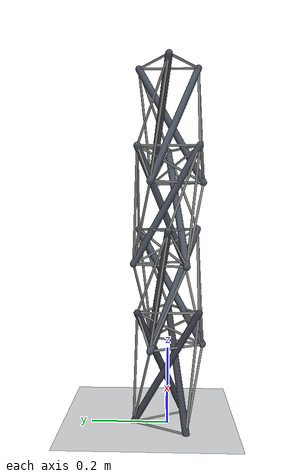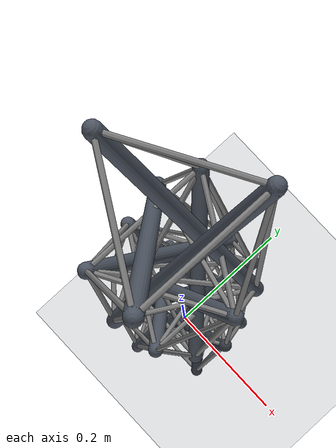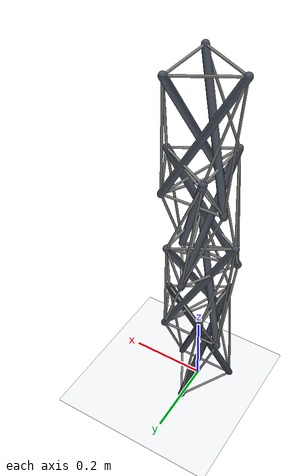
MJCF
<mujoco model="cell_graph">
  <compiler angle="radian" autolimits="true"/>
  <visual>
    <global offwidth="1600" offheight="1200"/>
    <headlight diffuse="0.7 0.7 0.7" ambient="0.45 0.45 0.45"
               specular="0.1 0.1 0.1"/>
  </visual>
  <asset>
    <texture type="skybox" builtin="flat" rgb1="1 1 1" rgb2="1 1 1"
             width="256" height="256"/>
    <texture name="grid" type="2d" builtin="checker" rgb1="0.88 0.89 0.90"
             rgb2="0.96 0.96 0.97" width="512" height="512"/>
    <material name="grid" texture="grid" texrepeat="10 10" reflectance="0.05"/>
  </asset>
  <option timestep="5e-05" integrator="implicitfast" gravity="0 0 -9.81"/>
  <worldbody>
    <light pos="1.2 -1.2 2.6" dir="-0.4 0.4 -1" directional="true"
           diffuse="0.85 0.85 0.85"/>
    <light pos="-1.5 1.0 2.0" dir="0.5 -0.35 -1" directional="true"
           diffuse="0.35 0.35 0.35"/>
    <geom name="floor" type="plane" size="4 4 0.1" material="grid"
          contype="0" conaffinity="0"/>
    <geom type="capsule" size="0.009" contype="0" conaffinity="0" rgba="0.22 0.24 0.28 1" fromto="0.00000 0.09000 0.00000 -0.04527 -0.07778 0.30000"/>
    <geom type="capsule" size="0.009" contype="0" conaffinity="0" rgba="0.22 0.24 0.28 1" fromto="-0.07794 -0.04500 0.00000 0.09000 -0.00031 0.30000"/>
    <geom type="capsule" size="0.009" contype="0" conaffinity="0" rgba="0.22 0.24 0.28 1" fromto="0.07794 -0.04500 0.00000 -0.04473 0.07810 0.30000"/>
    <site name="c0_b0" pos="0.00000 0.09000 0.00000" size="0.005"/>
    <site name="c0_t0" pos="-0.04473 0.07810 0.30000" size="0.005"/>
    <site name="c0_b1" pos="-0.07794 -0.04500 0.00000" size="0.005"/>
    <site name="c0_t1" pos="-0.04527 -0.07778 0.30000" size="0.005"/>
    <site name="c0_b2" pos="0.07794 -0.04500 0.00000" size="0.005"/>
    <site name="c0_t2" pos="0.09000 -0.00031 0.30000" size="0.005"/>

    <body name="c1_s0" pos="-0.01661 -0.01655 0.36000">
      <freejoint/>
      <geom type="capsule" size="0.009" mass="0.0200"
            contype="0" conaffinity="0" rgba="0.30 0.33 0.38 1"
            fromto="-0.06133 0.06155 -0.15000
                    0.06133 -0.06155 0.15000"/>      <site name="c1_b0" pos="-0.06133 0.06155 -0.15000" size="0.005"/>      <site name="c1_t1" pos="0.06133 -0.06155 0.15000" size="0.005"/>    </body>
    <body name="c1_s1" pos="0.02264 -0.00611 0.36000">
      <freejoint/>
      <geom type="capsule" size="0.009" mass="0.0200"
            contype="0" conaffinity="0" rgba="0.30 0.33 0.38 1"
            fromto="-0.02264 -0.08389 -0.15000
                    0.02264 0.08389 0.15000"/>      <site name="c1_b1" pos="-0.02264 -0.08389 -0.15000" size="0.005"/>      <site name="c1_t2" pos="0.02264 0.08389 0.15000" size="0.005"/>    </body>
    <body name="c1_s2" pos="-0.00603 0.02266 0.36000">
      <freejoint/>
      <geom type="capsule" size="0.009" mass="0.0200"
            contype="0" conaffinity="0" rgba="0.30 0.33 0.38 1"
            fromto="0.08397 0.02234 -0.15000
                    -0.08397 -0.02234 0.15000"/>      <site name="c1_b2" pos="0.08397 0.02234 -0.15000" size="0.005"/>      <site name="c1_t0" pos="-0.08397 -0.02234 0.15000" size="0.005"/>    </body>
    <body name="c2_s0" pos="0.00603 -0.02266 0.57000">
      <freejoint/>
      <geom type="capsule" size="0.009" mass="0.0200"
            contype="0" conaffinity="0" rgba="0.30 0.33 0.38 1"
            fromto="-0.08397 -0.02234 -0.15000
                    0.08397 0.02234 0.15000"/>      <site name="c2_b0" pos="-0.08397 -0.02234 -0.15000" size="0.005"/>      <site name="c2_t1" pos="0.08397 0.02234 0.15000" size="0.005"/>    </body>
    <body name="c2_s1" pos="0.01661 0.01655 0.57000">
      <freejoint/>
      <geom type="capsule" size="0.009" mass="0.0200"
            contype="0" conaffinity="0" rgba="0.30 0.33 0.38 1"
            fromto="0.06133 -0.06155 -0.15000
                    -0.06133 0.06155 0.15000"/>      <site name="c2_b1" pos="0.06133 -0.06155 -0.15000" size="0.005"/>      <site name="c2_t2" pos="-0.06133 0.06155 0.15000" size="0.005"/>    </body>
    <body name="c2_s2" pos="-0.02264 0.00611 0.57000">
      <freejoint/>
      <geom type="capsule" size="0.009" mass="0.0200"
            contype="0" conaffinity="0" rgba="0.30 0.33 0.38 1"
            fromto="0.02264 0.08389 -0.15000
                    -0.02264 -0.08389 0.15000"/>      <site name="c2_b2" pos="0.02264 0.08389 -0.15000" size="0.005"/>      <site name="c2_t0" pos="-0.02264 -0.08389 0.15000" size="0.005"/>    </body>
    <body name="c3_s0" pos="0.02264 -0.00611 0.78000">
      <freejoint/>
      <geom type="capsule" size="0.009" mass="0.0200"
            contype="0" conaffinity="0" rgba="0.30 0.33 0.38 1"
            fromto="-0.02264 -0.08389 -0.15000
                    0.02264 0.08389 0.15000"/>      <site name="c3_b0" pos="-0.02264 -0.08389 -0.15000" size="0.005"/>      <site name="c3_t1" pos="0.02264 0.08389 0.15000" size="0.005"/>    </body>
    <body name="c3_s1" pos="-0.00603 0.02266 0.78000">
      <freejoint/>
      <geom type="capsule" size="0.009" mass="0.0200"
            contype="0" conaffinity="0" rgba="0.30 0.33 0.38 1"
            fromto="0.08397 0.02234 -0.15000
                    -0.08397 -0.02234 0.15000"/>      <site name="c3_b1" pos="0.08397 0.02234 -0.15000" size="0.005"/>      <site name="c3_t2" pos="-0.08397 -0.02234 0.15000" size="0.005"/>    </body>
    <body name="c3_s2" pos="-0.01661 -0.01655 0.78000">
      <freejoint/>
      <geom type="capsule" size="0.009" mass="0.0200"
            contype="0" conaffinity="0" rgba="0.30 0.33 0.38 1"
            fromto="-0.06133 0.06155 -0.15000
                    0.06133 -0.06155 0.15000"/>      <site name="c3_b2" pos="-0.06133 0.06155 -0.15000" size="0.005"/>      <site name="c3_t0" pos="0.06133 -0.06155 0.15000" size="0.005"/>    </body>
  </worldbody>
  <tendon>
    <spatial name="c0" width="0.003" stiffness="40000.0" damping="4.00" springlength="0 0.152883">
      <site site="c0_b0"/>
      <site site="c0_b1"/>
    </spatial>
    <spatial name="c1" width="0.003" stiffness="40000.0" damping="4.00" springlength="0 0.152881">
      <site site="c0_t0"/>
      <site site="c0_t1"/>
    </spatial>
    <spatial name="c2" width="0.003" stiffness="40000.0" damping="4.00" springlength="0 0.300550">
      <site site="c0_b0"/>
      <site site="c0_t0"/>
    </spatial>
    <spatial name="c3" width="0.003" stiffness="40000.0" damping="4.00" springlength="0 0.152880">
      <site site="c0_b1"/>
      <site site="c0_b2"/>
    </spatial>
    <spatial name="c4" width="0.003" stiffness="40000.0" damping="4.00" springlength="0 0.152883">
      <site site="c0_t1"/>
      <site site="c0_t2"/>
    </spatial>
    <spatial name="c5" width="0.003" stiffness="40000.0" damping="4.00" springlength="0 0.300549">
      <site site="c0_b1"/>
      <site site="c0_t1"/>
    </spatial>
    <spatial name="c6" width="0.003" stiffness="40000.0" damping="4.00" springlength="0 0.152883">
      <site site="c0_b2"/>
      <site site="c0_b0"/>
    </spatial>
    <spatial name="c7" width="0.003" stiffness="40000.0" damping="4.00" springlength="0 0.152886">
      <site site="c0_t2"/>
      <site site="c0_t0"/>
    </spatial>
    <spatial name="c8" width="0.003" stiffness="40000.0" damping="4.00" springlength="0 0.300550">
      <site site="c0_b2"/>
      <site site="c0_t2"/>
    </spatial>
    <spatial name="c9" width="0.003" stiffness="40000.0" damping="4.00" springlength="0 0.152883">
      <site site="c1_b0"/>
      <site site="c1_b1"/>
    </spatial>
    <spatial name="c10" width="0.003" stiffness="40000.0" damping="4.00" springlength="0 0.152882">
      <site site="c1_t0"/>
      <site site="c1_t1"/>
    </spatial>
    <spatial name="c11" width="0.003" stiffness="40000.0" damping="4.00" springlength="0 0.300549">
      <site site="c1_b0"/>
      <site site="c1_t0"/>
    </spatial>
    <spatial name="c12" width="0.003" stiffness="40000.0" damping="4.00" springlength="0 0.152883">
      <site site="c1_b1"/>
      <site site="c1_b2"/>
    </spatial>
    <spatial name="c13" width="0.003" stiffness="40000.0" damping="4.00" springlength="0 0.152881">
      <site site="c1_t1"/>
      <site site="c1_t2"/>
    </spatial>
    <spatial name="c14" width="0.003" stiffness="40000.0" damping="4.00" springlength="0 0.300548">
      <site site="c1_b1"/>
      <site site="c1_t1"/>
    </spatial>
    <spatial name="c15" width="0.003" stiffness="40000.0" damping="4.00" springlength="0 0.152880">
      <site site="c1_b2"/>
      <site site="c1_b0"/>
    </spatial>
    <spatial name="c16" width="0.003" stiffness="40000.0" damping="4.00" springlength="0 0.152887">
      <site site="c1_t2"/>
      <site site="c1_t0"/>
    </spatial>
    <spatial name="c17" width="0.003" stiffness="40000.0" damping="4.00" springlength="0 0.300548">
      <site site="c1_b2"/>
      <site site="c1_t2"/>
    </spatial>
    <spatial name="c18" width="0.003" stiffness="40000.0" damping="4.00" springlength="0 0.098482">
      <site site="c0_t0"/>
      <site site="c1_b0"/>
    </spatial>
    <spatial name="c19" width="0.003" stiffness="40000.0" damping="4.00" springlength="0 0.225471">
      <site site="c0_t0"/>
      <site site="c1_t0"/>
    </spatial>
    <spatial name="c20" width="0.003" stiffness="40000.0" damping="4.00" springlength="0 0.192853">
      <site site="c0_t0"/>
      <site site="c1_b1"/>
    </spatial>
    <spatial name="c21" width="0.003" stiffness="40000.0" damping="4.00" springlength="0 0.225472">
      <site site="c0_b0"/>
      <site site="c1_b0"/>
    </spatial>
    <spatial name="c22" width="0.003" stiffness="40000.0" damping="4.00" springlength="0 0.098483">
      <site site="c0_t1"/>
      <site site="c1_b1"/>
    </spatial>
    <spatial name="c23" width="0.003" stiffness="40000.0" damping="4.00" springlength="0 0.225469">
      <site site="c0_t1"/>
      <site site="c1_t1"/>
    </spatial>
    <spatial name="c24" width="0.003" stiffness="40000.0" damping="4.00" springlength="0 0.192846">
      <site site="c0_t1"/>
      <site site="c1_b2"/>
    </spatial>
    <spatial name="c25" width="0.003" stiffness="40000.0" damping="4.00" springlength="0 0.225472">
      <site site="c0_b1"/>
      <site site="c1_b1"/>
    </spatial>
    <spatial name="c26" width="0.003" stiffness="40000.0" damping="4.00" springlength="0 0.098481">
      <site site="c0_t2"/>
      <site site="c1_b2"/>
    </spatial>
    <spatial name="c27" width="0.003" stiffness="40000.0" damping="4.00" springlength="0 0.225469">
      <site site="c0_t2"/>
      <site site="c1_t2"/>
    </spatial>
    <spatial name="c28" width="0.003" stiffness="40000.0" damping="4.00" springlength="0 0.192849">
      <site site="c0_t2"/>
      <site site="c1_b0"/>
    </spatial>
    <spatial name="c29" width="0.003" stiffness="40000.0" damping="4.00" springlength="0 0.225473">
      <site site="c0_b2"/>
      <site site="c1_b2"/>
    </spatial>
    <spatial name="c30" width="0.003" stiffness="40000.0" damping="4.00" springlength="0 0.152880">
      <site site="c2_b0"/>
      <site site="c2_b1"/>
    </spatial>
    <spatial name="c31" width="0.003" stiffness="40000.0" damping="4.00" springlength="0 0.152887">
      <site site="c2_t0"/>
      <site site="c2_t1"/>
    </spatial>
    <spatial name="c32" width="0.003" stiffness="40000.0" damping="4.00" springlength="0 0.300548">
      <site site="c2_b0"/>
      <site site="c2_t0"/>
    </spatial>
    <spatial name="c33" width="0.003" stiffness="40000.0" damping="4.00" springlength="0 0.152883">
      <site site="c2_b1"/>
      <site site="c2_b2"/>
    </spatial>
    <spatial name="c34" width="0.003" stiffness="40000.0" damping="4.00" springlength="0 0.152882">
      <site site="c2_t1"/>
      <site site="c2_t2"/>
    </spatial>
    <spatial name="c35" width="0.003" stiffness="40000.0" damping="4.00" springlength="0 0.300549">
      <site site="c2_b1"/>
      <site site="c2_t1"/>
    </spatial>
    <spatial name="c36" width="0.003" stiffness="40000.0" damping="4.00" springlength="0 0.152883">
      <site site="c2_b2"/>
      <site site="c2_b0"/>
    </spatial>
    <spatial name="c37" width="0.003" stiffness="40000.0" damping="4.00" springlength="0 0.152881">
      <site site="c2_t2"/>
      <site site="c2_t0"/>
    </spatial>
    <spatial name="c38" width="0.003" stiffness="40000.0" damping="4.00" springlength="0 0.300548">
      <site site="c2_b2"/>
      <site site="c2_t2"/>
    </spatial>
    <spatial name="c39" width="0.003" stiffness="40000.0" damping="4.00" springlength="0 0.098486">
      <site site="c1_t0"/>
      <site site="c2_b0"/>
    </spatial>
    <spatial name="c40" width="0.003" stiffness="40000.0" damping="4.00" springlength="0 0.225472">
      <site site="c1_t0"/>
      <site site="c2_t0"/>
    </spatial>
    <spatial name="c41" width="0.003" stiffness="40000.0" damping="4.00" springlength="0 0.192851">
      <site site="c1_t0"/>
      <site site="c2_b1"/>
    </spatial>
    <spatial name="c42" width="0.003" stiffness="40000.0" damping="4.00" springlength="0 0.225473">
      <site site="c1_b0"/>
      <site site="c2_b0"/>
    </spatial>
    <spatial name="c43" width="0.003" stiffness="40000.0" damping="4.00" springlength="0 0.098485">
      <site site="c1_t1"/>
      <site site="c2_b1"/>
    </spatial>
    <spatial name="c44" width="0.003" stiffness="40000.0" damping="4.00" springlength="0 0.225473">
      <site site="c1_t1"/>
      <site site="c2_t1"/>
    </spatial>
    <spatial name="c45" width="0.003" stiffness="40000.0" damping="4.00" springlength="0 0.192851">
      <site site="c1_t1"/>
      <site site="c2_b2"/>
    </spatial>
    <spatial name="c46" width="0.003" stiffness="40000.0" damping="4.00" springlength="0 0.225472">
      <site site="c1_b1"/>
      <site site="c2_b1"/>
    </spatial>
    <spatial name="c47" width="0.003" stiffness="40000.0" damping="4.00" springlength="0 0.098487">
      <site site="c1_t2"/>
      <site site="c2_b2"/>
    </spatial>
    <spatial name="c48" width="0.003" stiffness="40000.0" damping="4.00" springlength="0 0.225473">
      <site site="c1_t2"/>
      <site site="c2_t2"/>
    </spatial>
    <spatial name="c49" width="0.003" stiffness="40000.0" damping="4.00" springlength="0 0.192852">
      <site site="c1_t2"/>
      <site site="c2_b0"/>
    </spatial>
    <spatial name="c50" width="0.003" stiffness="40000.0" damping="4.00" springlength="0 0.225472">
      <site site="c1_b2"/>
      <site site="c2_b2"/>
    </spatial>
    <spatial name="c51" width="0.003" stiffness="40000.0" damping="4.00" springlength="0 0.152883">
      <site site="c3_b0"/>
      <site site="c3_b1"/>
    </spatial>
    <spatial name="c52" width="0.003" stiffness="40000.0" damping="4.00" springlength="0 0.152881">
      <site site="c3_t0"/>
      <site site="c3_t1"/>
    </spatial>
    <spatial name="c53" width="0.003" stiffness="40000.0" damping="4.00" springlength="0 0.300548">
      <site site="c3_b0"/>
      <site site="c3_t0"/>
    </spatial>
    <spatial name="c54" width="0.003" stiffness="40000.0" damping="4.00" springlength="0 0.152880">
      <site site="c3_b1"/>
      <site site="c3_b2"/>
    </spatial>
    <spatial name="c55" width="0.003" stiffness="40000.0" damping="4.00" springlength="0 0.152887">
      <site site="c3_t1"/>
      <site site="c3_t2"/>
    </spatial>
    <spatial name="c56" width="0.003" stiffness="40000.0" damping="4.00" springlength="0 0.300548">
      <site site="c3_b1"/>
      <site site="c3_t1"/>
    </spatial>
    <spatial name="c57" width="0.003" stiffness="40000.0" damping="4.00" springlength="0 0.152883">
      <site site="c3_b2"/>
      <site site="c3_b0"/>
    </spatial>
    <spatial name="c58" width="0.003" stiffness="40000.0" damping="4.00" springlength="0 0.152882">
      <site site="c3_t2"/>
      <site site="c3_t0"/>
    </spatial>
    <spatial name="c59" width="0.003" stiffness="40000.0" damping="4.00" springlength="0 0.300549">
      <site site="c3_b2"/>
      <site site="c3_t2"/>
    </spatial>
    <spatial name="c60" width="0.003" stiffness="40000.0" damping="4.00" springlength="0 0.098487">
      <site site="c2_t0"/>
      <site site="c3_b0"/>
    </spatial>
    <spatial name="c61" width="0.003" stiffness="40000.0" damping="4.00" springlength="0 0.225473">
      <site site="c2_t0"/>
      <site site="c3_t0"/>
    </spatial>
    <spatial name="c62" width="0.003" stiffness="40000.0" damping="4.00" springlength="0 0.192852">
      <site site="c2_t0"/>
      <site site="c3_b1"/>
    </spatial>
    <spatial name="c63" width="0.003" stiffness="40000.0" damping="4.00" springlength="0 0.225472">
      <site site="c2_b0"/>
      <site site="c3_b0"/>
    </spatial>
    <spatial name="c64" width="0.003" stiffness="40000.0" damping="4.00" springlength="0 0.098486">
      <site site="c2_t1"/>
      <site site="c3_b1"/>
    </spatial>
    <spatial name="c65" width="0.003" stiffness="40000.0" damping="4.00" springlength="0 0.225472">
      <site site="c2_t1"/>
      <site site="c3_t1"/>
    </spatial>
    <spatial name="c66" width="0.003" stiffness="40000.0" damping="4.00" springlength="0 0.192851">
      <site site="c2_t1"/>
      <site site="c3_b2"/>
    </spatial>
    <spatial name="c67" width="0.003" stiffness="40000.0" damping="4.00" springlength="0 0.225473">
      <site site="c2_b1"/>
      <site site="c3_b1"/>
    </spatial>
    <spatial name="c68" width="0.003" stiffness="40000.0" damping="4.00" springlength="0 0.098485">
      <site site="c2_t2"/>
      <site site="c3_b2"/>
    </spatial>
    <spatial name="c69" width="0.003" stiffness="40000.0" damping="4.00" springlength="0 0.225473">
      <site site="c2_t2"/>
      <site site="c3_t2"/>
    </spatial>
    <spatial name="c70" width="0.003" stiffness="40000.0" damping="4.00" springlength="0 0.192851">
      <site site="c2_t2"/>
      <site site="c3_b0"/>
    </spatial>
    <spatial name="c71" width="0.003" stiffness="40000.0" damping="4.00" springlength="0 0.225472">
      <site site="c2_b2"/>
      <site site="c3_b2"/>
    </spatial>
  </tendon>
</mujoco>
